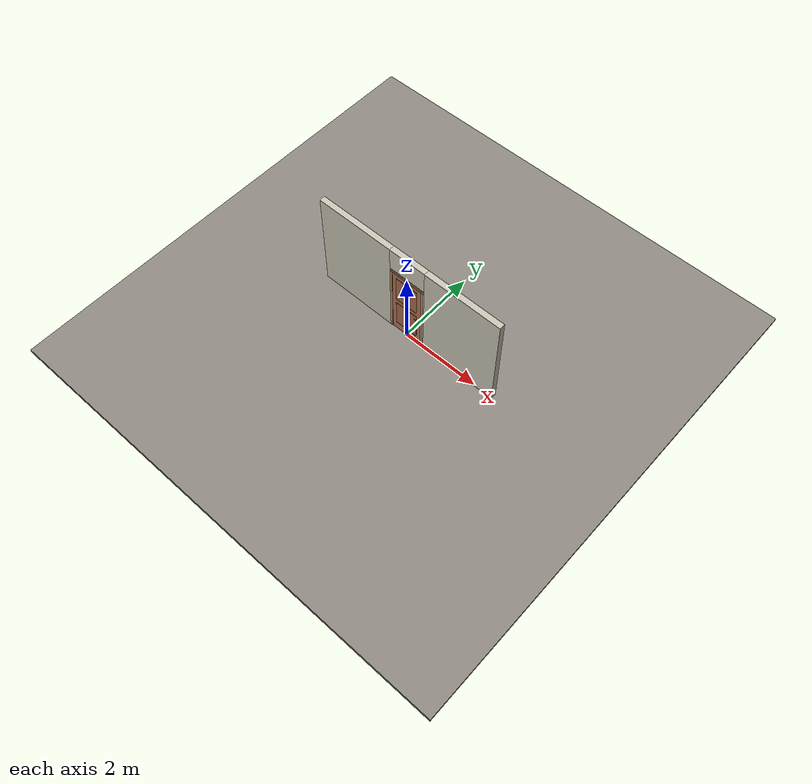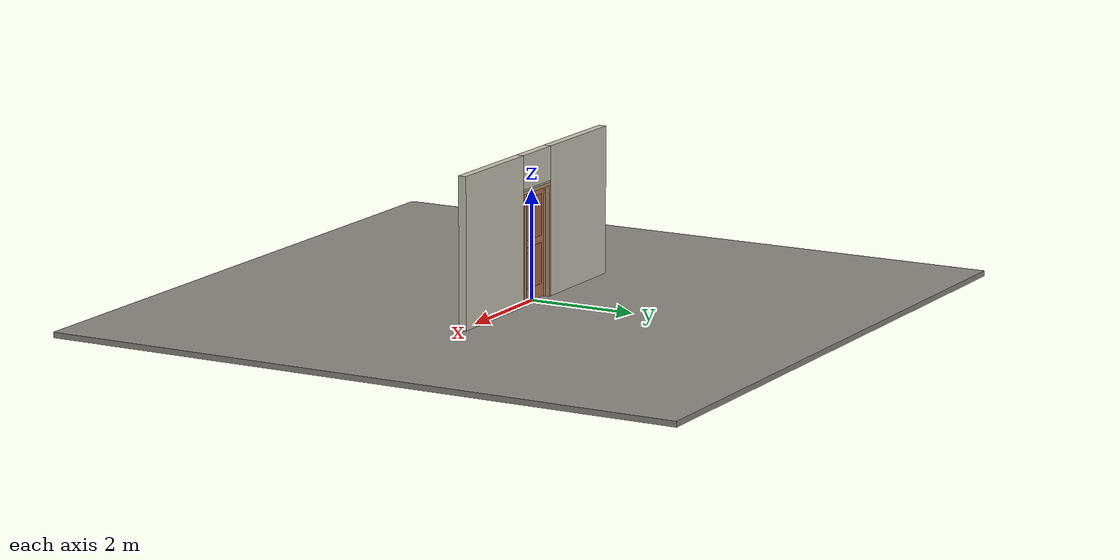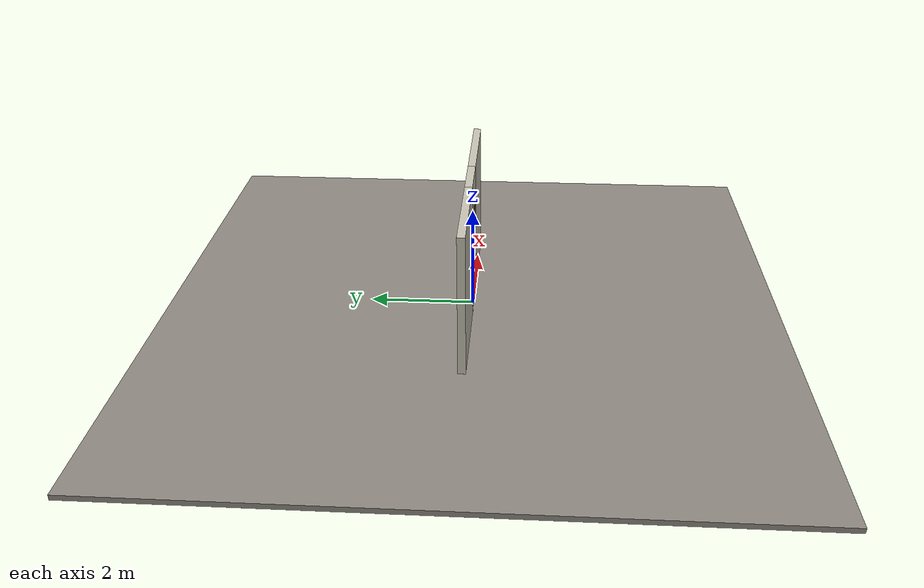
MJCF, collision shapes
<?xml version="1.0" ?>
<mujoco model="db0139_swing_single_full">
  <compiler angle="radian" meshdir="../../hardware" texturedir="../../textures" autolimits="true" inertiafromgeom="false"/>
  <option timestep="0.002" integrator="implicitfast" cone="elliptic" impratio="10" noslip_iterations="3">
    <flag multiccd="enable"/>
  </option>
  <size memory="16M"/>
  <default>
    <geom condim="4" solref="0.005 1" solimp="0.95 0.99 0.001"/>
    <joint solreflimit="0.005 1" solimplimit="0.95 0.99 0.001"/>
    <tendon solreflimit="0.005 1"/>
    <equality solref="0.002 1"/>
  </default>
  <visual>
    <headlight ambient="0.4 0.4 0.4" diffuse="0.7 0.7 0.7" specular="0.2 0.2 0.2"/>
    <quality shadowsize="4096"/>
    <map znear="0.01" zfar="60"/>
  </visual>
  <asset>
    <mesh name="hinge_c20a5829de" file="hinge_c20a5829de.obj"/>
    <mesh name="hinge_jamb_20499e6581" file="hinge_jamb_20499e6581.obj"/>
    <mesh name="ring_cc5c941a8a" file="ring_cc5c941a8a.obj"/>
    <material name="mat_floor" rgba="0.55 0.53 0.5 1" specular="0.2" shininess="0.15" reflectance="0"/>
    <material name="mat_wall" rgba="0.78 0.76 0.7 1" specular="0.2" shininess="0.1" reflectance="0"/>
    <material name="mat_hinge" rgba="0.55 0.56 0.58 1" specular="0.8" shininess="0.55" reflectance="0.4"/>
    <material name="mat_leaf" rgba="0.7 0.45 0.32 1" specular="0.2" shininess="0.4" reflectance="0"/>
    <material name="mat_leaf_panel" rgba="0.644 0.414 0.294 1" specular="0.2" shininess="0.4" reflectance="0"/>
    <material name="mat_op_wrought_iron" rgba="0.08 0.08 0.09 1" specular="0.56" shininess="0.25" reflectance="0.24"/>
    <material name="mat_frame" rgba="0.7 0.58 0.42 1" specular="0.2" shininess="0.5" reflectance="0"/>
    <texture name="skybox" type="skybox" builtin="gradient" rgb1="0.6 0.7 0.85" rgb2="0.9 0.92 0.95" width="256" height="256"/>
  </asset>
  <worldbody>
    <light name="sun" pos="1.5 -2.5 4" dir="-0.3 0.5 -0.8" directional="true" diffuse="0.8 0.8 0.8" specular="0.3 0.3 0.3" castshadow="true"/>
    <light name="fill" pos="-1.5 2.5 3" dir="0.3 -0.5 -0.7" directional="true" diffuse="0.35 0.35 0.4" castshadow="false"/>
    <camera name="robot_view" pos="0 -2.450125 1.698475" xyaxes="1 0 0 0 0.26963 0.962964" fovy="52"/>
    <camera name="far_view" pos="0 2.546125 1.698475" xyaxes="-1 0 0 0 -0.26963 0.962964" fovy="52"/>
    <camera name="iso" pos="1.898575 -2.050425 2.098175" xyaxes="0.741536 0.670913 0 -0.242917 0.268487 0.932151" fovy="46"/>
    <camera name="detail_handle" pos="0.481 -0.8495 1.185" xyaxes="0.97561 0.219512 0 -0.070934 0.315262 0.94635" fovy="38"/>
    <geom name="floor" type="box" size="6 6 0.05" pos="0 0 -0.05" material="mat_floor" group="0" contype="1" conaffinity="1" friction="0.8 0.005 0.0001" density="2400"/>
    <geom name="wall_left" type="box" size="1.015 0.0725 1.35" pos="-1.485 0.048 1.35" material="mat_wall" group="0" contype="1" conaffinity="1" friction="0.6 0.005 0.0001" density="800"/>
    <geom name="wall_right" type="box" size="1 0.0725 1.35" pos="1.5 0.048 1.35" material="mat_wall" group="0" contype="1" conaffinity="1" friction="0.6 0.005 0.0001" density="800"/>
    <geom name="wall_header" type="box" size="0.485 0.0725 0.306" pos="0.015 0.048 2.394" material="mat_wall" group="0" contype="1" conaffinity="1" friction="0.6 0.005 0.0001" density="800"/>
    <geom name="hinge_0_jamb" type="mesh" mesh="hinge_jamb_20499e6581" pos="-0.407 -0.0245 0.259" material="mat_hinge" group="1" contype="0" conaffinity="0" density="7850"/>
    <geom name="hinge_1_jamb" type="mesh" mesh="hinge_jamb_20499e6581" pos="-0.407 -0.0245 0.9963" material="mat_hinge" group="1" contype="0" conaffinity="0" density="7850"/>
    <geom name="hinge_2_jamb" type="mesh" mesh="hinge_jamb_20499e6581" pos="-0.407 -0.0245 1.8036" material="mat_hinge" group="1" contype="0" conaffinity="0" density="7850"/>
    <geom name="jamb_hinge" type="box" size="0.03 0.0725 0.999" pos="-0.44 0.048 0.999" material="mat_frame" group="0" contype="1" conaffinity="1" friction="0.6 0.005 0.0001" density="750"/>
    <geom name="jamb_strike" type="box" size="0.03 0.0725 0.999" pos="0.44 0.048 0.999" material="mat_frame" group="0" contype="1" conaffinity="1" friction="0.6 0.005 0.0001" density="750"/>
    <geom name="stud_strike" type="box" size="0.015 0.0725 0.999" pos="0.485 0.048 0.999" material="mat_wall" group="0" contype="1" conaffinity="1" friction="0.6 0.005 0.0001" density="500"/>
    <geom name="jamb_head" type="box" size="0.485 0.0725 0.03" pos="0.015 0.048 2.028" material="mat_frame" group="0" contype="1" conaffinity="1" friction="0.6 0.005 0.0001" density="750"/>
    <geom name="head_stud" type="box" size="0.485 0.0725 0.015" pos="0.015 0.048 2.073" material="mat_wall" group="0" contype="1" conaffinity="1" friction="0.6 0.005 0.0001" density="500"/>
    <geom name="stop_hinge" type="box" size="0.0055 0.016 0.999" pos="-0.4045 0.034 0.999" material="mat_frame" group="0" contype="1" conaffinity="1" friction="0.6 0.005 0.0001" density="750"/>
    <geom name="stop_strike" type="box" size="0.0055 0.016 0.999" pos="0.4045 0.034 0.999" material="mat_frame" group="0" contype="1" conaffinity="1" friction="0.6 0.005 0.0001" density="750"/>
    <geom name="stop_head" type="box" size="0.41 0.016 0.0055" pos="0 0.034 1.9925" material="mat_frame" group="0" contype="1" conaffinity="1" friction="0.6 0.005 0.0001" density="750"/>
    <site name="approach_point" pos="0 -1.5 0" quat="1 0 0 0" size="0.05" rgba="0.2 0.9 0.2 0.5" group="4"/>
    <site name="goal_point" pos="0 1.5 0" quat="1 0 0 0" size="0.05" rgba="0.2 0.9 0.2 0.5" group="4"/>
    <site name="door_plane_center" pos="0 0 0.999" quat="1 0 0 0" size="0.02" rgba="0.2 0.9 0.2 0.5" group="4"/>
    <body name="leaf_riser" pos="-0.41 0 0">
      <inertial pos="0.003 -0.0245 0.055" mass="0.174012" quat="0.707107 0 0.707107 0" diaginertia="0.000017053 0.00002732 0.00002732"/>
      <joint name="leaf_rise" type="slide" axis="0 0 1" limited="true" range="0 0.0176" damping="1" armature="0.5"/>
      <geom name="leaf_riser_marker" type="cylinder" size="0.014 0.018" pos="0.003 -0.0245 0.055" material="mat_hinge" group="1" contype="0" conaffinity="0" density="7850"/>
      <body name="leaf" pos="0 0 0">
        <inertial pos="0.408001 -0.000463 0.995578" mass="20.8451" quat="0.500098 -0.498561 -0.501486 -0.49985" diaginertia="1.241323388 6.600956052 7.834119188"/>
        <joint name="leaf_hinge" type="hinge" axis="0 0 -1" pos="0.003 -0.0245 0" limited="true" range="0 1.919862" damping="0.206618" frictionloss="1.836743" armature="0.02"/>
        <geom name="leaf_slab" type="box" size="0.4065 0.0175 0.9873" pos="0.4095 0 0.9963" material="mat_leaf" group="0" contype="1" conaffinity="1" friction="0.35 0.005 0.0001" density="1"/>
        <geom name="leaf_panel_0_n" type="box" size="0.2965 0.003 0.372166" pos="0.4095 -0.0205 0.618372" material="mat_leaf_panel" group="1" contype="0" conaffinity="0" density="1"/>
        <geom name="leaf_panel_0_p" type="box" size="0.2965 0.003 0.372166" pos="0.4095 0.0205 0.618372" material="mat_leaf_panel" group="1" contype="0" conaffinity="0" density="1"/>
        <geom name="leaf_panel_1_n" type="box" size="0.2965 0.003 0.372166" pos="0.4095 -0.0205 1.492704" material="mat_leaf_panel" group="1" contype="0" conaffinity="0" density="1"/>
        <geom name="leaf_panel_1_p" type="box" size="0.2965 0.003 0.372166" pos="0.4095 0.0205 1.492704" material="mat_leaf_panel" group="1" contype="0" conaffinity="0" density="1"/>
        <geom name="hinge_0" type="mesh" mesh="hinge_c20a5829de" pos="0.003 -0.0245 0.259" material="mat_hinge" group="1" contype="0" conaffinity="0" density="7850"/>
        <geom name="hinge_1" type="mesh" mesh="hinge_c20a5829de" pos="0.003 -0.0245 0.9963" material="mat_hinge" group="1" contype="0" conaffinity="0" density="7850"/>
        <geom name="hinge_2" type="mesh" mesh="hinge_c20a5829de" pos="0.003 -0.0245 1.8036" material="mat_hinge" group="1" contype="0" conaffinity="0" density="7850"/>
        <geom name="leaf_ring_pull_n" type="mesh" mesh="ring_cc5c941a8a" pos="0.711 -0.0175 0.965" quat="0.707107 0.707107 0 0" material="mat_op_wrought_iron" group="1" contype="0" conaffinity="0" density="3000"/>
        <geom name="leaf_ring_pull_col_n" type="capsule" size="0.008 0.05" pos="0.711 -0.0495 0.905" quat="0.707107 0 0.707107 0" material="mat_op_wrought_iron" group="3" contype="1" conaffinity="1" rgba="0.8 0.3 0.3 0.25" friction="0.7 0.01 0.0001" density="3000"/>
        <geom name="leaf_ring_pull_p" type="mesh" mesh="ring_cc5c941a8a" pos="0.711 0.0175 0.965" quat="-0.707107 0.707107 0 0" material="mat_op_wrought_iron" group="1" contype="0" conaffinity="0" density="3000"/>
        <geom name="leaf_ring_pull_col_p" type="capsule" size="0.008 0.05" pos="0.711 0.0495 0.905" quat="0.707107 0 0.707107 0" material="mat_op_wrought_iron" group="3" contype="1" conaffinity="1" rgba="0.8 0.3 0.3 0.25" friction="0.7 0.01 0.0001" density="3000"/>
        <site name="leaf_ring_pull_grip_n" pos="0.711 -0.0495 0.905" quat="1 0 0 0" size="0.012" rgba="0.2 0.9 0.2 0.5" group="4"/>
        <site name="leaf_ring_pull_grip_p" pos="0.711 0.0495 0.905" quat="1 0 0 0" size="0.012" rgba="0.2 0.9 0.2 0.5" group="4"/>
        <site name="leaf_edge_mid" pos="0.816 0 0.9873" quat="1 0 0 0" size="0.02" rgba="0.2 0.9 0.2 0.5" group="4"/>
      </body>
    </body>
  </worldbody>
  <equality>
    <joint name="leaf_rise_couple" joint1="leaf_rise" joint2="leaf_hinge" polycoef="0 0.005093 0 0 0" active="true"/>
  </equality>
  <sensor>
    <jointpos name="leaf_hinge_pos" joint="leaf_hinge"/>
    <jointvel name="leaf_hinge_vel" joint="leaf_hinge"/>
  </sensor>
</mujoco>
